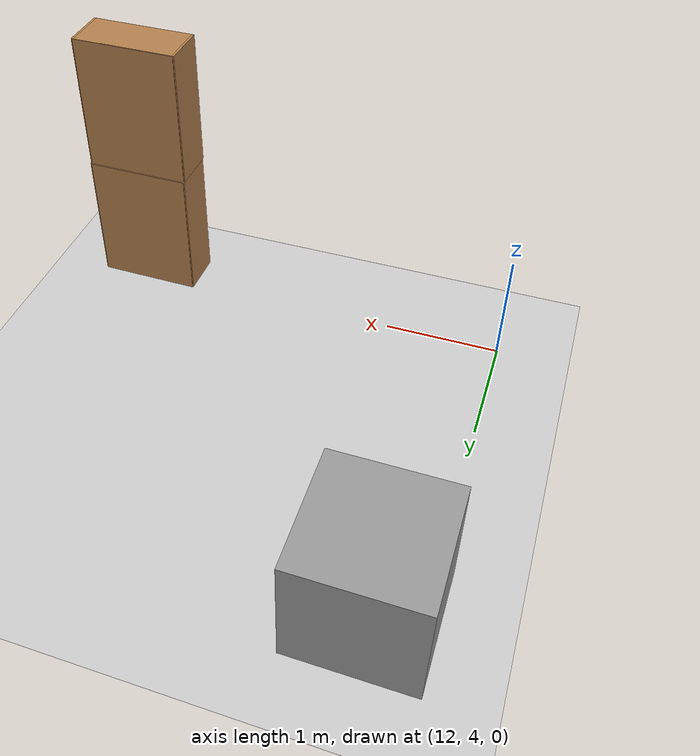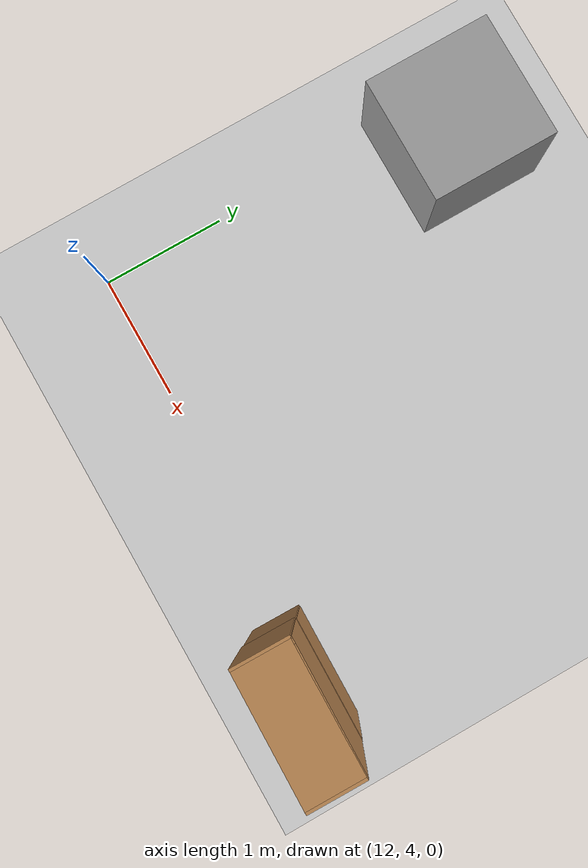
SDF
<sdf version="1.7">
 <world name="default">
  <model name="ground_plane">
   <static>1</static>
   <link name="link">
    <collision name="collision">
     <geometry><plane><normal>0 0 1</normal><size>100 100</size></plane></geometry>
     <surface>
      <contact><collide_bitmask>65535</collide_bitmask></contact>
      <friction><ode><mu>100</mu><mu2>50</mu2></ode></friction>
     </surface>
    </collision>
    <visual name="visual">
     <cast_shadows>0</cast_shadows>
     <geometry><plane><normal>0 0 1</normal><size>100 100</size></plane></geometry>
     <material>
      <script><uri>file://media/materials/scripts/gazebo.material</uri><name>Gazebo/Grey</name></script>
     </material>
    </visual>
   </link>
  </model>
  <model name="Untitled_1">
   <link name="link_0">
    <inertial>
     <mass>1</mass>
     <inertia>
      <ixx>0.166667</ixx>
      <ixy>0</ixy>
      <ixz>0</ixz>
      <iyy>0.166667</iyy>
      <iyz>0</iyz>
      <izz>0.166667</izz>
     </inertia>
    </inertial>
    <pose>-1.2e-05 -4e-06 0 0 -0 0</pose>
    <visual name="visual">
     <geometry><box><size>1 1 1</size></box></geometry>
     <material>
      <lighting>1</lighting>
      <script><uri>file://media/materials/scripts/gazebo.material</uri><name>Gazebo/Grey</name></script>
      <shader type="pixel"/>
     </material>
    </visual>
    <collision name="collision">
     <geometry><box><size>1 1 1</size></box></geometry>
     <surface>
      <friction>
       <ode><mu>1</mu><mu2>1</mu2><fdir1>0 0 0</fdir1><slip1>0</slip1><slip2>0</slip2></ode>
       <torsional>
        <coefficient>1</coefficient>
        <patch_radius>0</patch_radius>
        <surface_radius>0</surface_radius>
        <use_patch_radius>1</use_patch_radius>
        <ode><slip>0</slip></ode>
       </torsional>
      </friction>
      <bounce><restitution_coefficient>0</restitution_coefficient><threshold>1e+06</threshold></bounce>
      <contact>
       <collide_without_contact>0</collide_without_contact>
       <collide_without_contact_bitmask>1</collide_without_contact_bitmask>
       <collide_bitmask>1</collide_bitmask>
       <ode>
        <soft_cfm>0</soft_cfm>
        <soft_erp>0.2</soft_erp>
        <kp>1e+13</kp>
        <kd>1</kd>
        <max_vel>0.01</max_vel>
        <min_depth>0</min_depth>
       </ode>
       <bullet>
        <split_impulse>1</split_impulse>
        <split_impulse_penetration_threshold>-0.01</split_impulse_penetration_threshold>
        <soft_cfm>0</soft_cfm>
        <soft_erp>0.2</soft_erp>
        <kp>1e+13</kp>
        <kd>1</kd>
       </bullet>
      </contact>
     </surface>
    </collision>
   </link>
   <static>0</static>
   <pose>12.3802 6.85414 0.499995 0 1e-05 0</pose>
  </model>
  <model name="bookshelf_clone_1">
   <static>1</static>
   <link name="link">
    <inertial><mass>1</mass></inertial>
    <collision name="back">
     <pose>0 0.005 0.6 0 -0 0</pose>
     <geometry><box><size>0.9 0.01 1.2</size></box></geometry>
    </collision>
    <visual name="visual1">
     <pose>0 0.005 0.6 0 -0 0</pose>
     <geometry><box><size>0.9 0.01 1.2</size></box></geometry>
     <material>
      <script><uri>file://media/materials/scripts/gazebo.material</uri><name>Gazebo/Wood</name></script>
     </material>
    </visual>
    <collision name="left_side">
     <pose>0.45 -0.195 0.6 0 -0 0</pose>
     <geometry><box><size>0.02 0.4 1.2</size></box></geometry>
    </collision>
    <visual name="visual2">
     <pose>0.45 -0.195 0.6 0 -0 0</pose>
     <geometry><box><size>0.02 0.4 1.2</size></box></geometry>
     <material>
      <script><uri>file://media/materials/scripts/gazebo.material</uri><name>Gazebo/Wood</name></script>
     </material>
    </visual>
    <collision name="right_side">
     <pose>-0.45 -0.195 0.6 0 -0 0</pose>
     <geometry><box><size>0.02 0.4 1.2</size></box></geometry>
    </collision>
    <visual name="visual3">
     <pose>-0.45 -0.195 0.6 0 -0 0</pose>
     <geometry><box><size>0.02 0.4 1.2</size></box></geometry>
     <material>
      <script><uri>file://media/materials/scripts/gazebo.material</uri><name>Gazebo/Wood</name></script>
     </material>
    </visual>
    <collision name="bottom">
     <pose>0 -0.195 0.03 0 -0 0</pose>
     <geometry><box><size>0.88 0.4 0.06</size></box></geometry>
    </collision>
    <visual name="visual4">
     <pose>0 -0.195 0.03 0 -0 0</pose>
     <geometry><box><size>0.88 0.4 0.06</size></box></geometry>
     <material>
      <script><uri>file://media/materials/scripts/gazebo.material</uri><name>Gazebo/Wood</name></script>
     </material>
    </visual>
    <collision name="top">
     <pose>0 -0.195 1.19 0 -0 0</pose>
     <geometry><box><size>0.88 0.4 0.02</size></box></geometry>
    </collision>
    <visual name="visual5">
     <pose>0 -0.195 1.19 0 -0 0</pose>
     <geometry><box><size>0.88 0.4 0.02</size></box></geometry>
     <material>
      <script><uri>file://media/materials/scripts/gazebo.material</uri><name>Gazebo/Wood</name></script>
     </material>
    </visual>
    <collision name="low_shelf">
     <pose>0 -0.195 0.43 0 -0 0</pose>
     <geometry><box><size>0.88 0.4 0.02</size></box></geometry>
    </collision>
    <visual name="visual6">
     <pose>0 -0.195 0.43 0 -0 0</pose>
     <geometry><box><size>0.88 0.4 0.02</size></box></geometry>
     <material>
      <script><uri>file://media/materials/scripts/gazebo.material</uri><name>Gazebo/Wood</name></script>
     </material>
    </visual>
    <collision name="high_shelf">
     <pose>0 -0.195 0.8 0 -0 0</pose>
     <geometry><box><size>0.88 0.4 0.02</size></box></geometry>
    </collision>
    <visual name="visual7">
     <pose>0 -0.195 0.8 0 -0 0</pose>
     <geometry><box><size>0.88 0.4 0.02</size></box></geometry>
     <material>
      <script><uri>file://media/materials/scripts/gazebo.material</uri><name>Gazebo/Wood</name></script>
     </material>
    </visual>
   </link>
   <pose>15.3561 4.05428 1.20996 0 0 -0.012809</pose>
  </model>
  <model name="bookshelf_clone_1_clone_0">
   <static>1</static>
   <link name="link">
    <inertial><mass>1</mass></inertial>
    <collision name="back">
     <pose>0 0.005 0.6 0 -0 0</pose>
     <geometry><box><size>0.9 0.01 1.2</size></box></geometry>
    </collision>
    <visual name="visual1">
     <pose>0 0.005 0.6 0 -0 0</pose>
     <geometry><box><size>0.9 0.01 1.2</size></box></geometry>
     <material>
      <script><uri>file://media/materials/scripts/gazebo.material</uri><name>Gazebo/Wood</name></script>
     </material>
    </visual>
    <collision name="left_side">
     <pose>0.45 -0.195 0.6 0 -0 0</pose>
     <geometry><box><size>0.02 0.4 1.2</size></box></geometry>
    </collision>
    <visual name="visual2">
     <pose>0.45 -0.195 0.6 0 -0 0</pose>
     <geometry><box><size>0.02 0.4 1.2</size></box></geometry>
     <material>
      <script><uri>file://media/materials/scripts/gazebo.material</uri><name>Gazebo/Wood</name></script>
     </material>
    </visual>
    <collision name="right_side">
     <pose>-0.45 -0.195 0.6 0 -0 0</pose>
     <geometry><box><size>0.02 0.4 1.2</size></box></geometry>
    </collision>
    <visual name="visual3">
     <pose>-0.45 -0.195 0.6 0 -0 0</pose>
     <geometry><box><size>0.02 0.4 1.2</size></box></geometry>
     <material>
      <script><uri>file://media/materials/scripts/gazebo.material</uri><name>Gazebo/Wood</name></script>
     </material>
    </visual>
    <collision name="bottom">
     <pose>0 -0.195 0.03 0 -0 0</pose>
     <geometry><box><size>0.88 0.4 0.06</size></box></geometry>
    </collision>
    <visual name="visual4">
     <pose>0 -0.195 0.03 0 -0 0</pose>
     <geometry><box><size>0.88 0.4 0.06</size></box></geometry>
     <material>
      <script><uri>file://media/materials/scripts/gazebo.material</uri><name>Gazebo/Wood</name></script>
     </material>
    </visual>
    <collision name="top">
     <pose>0 -0.195 1.19 0 -0 0</pose>
     <geometry><box><size>0.88 0.4 0.02</size></box></geometry>
    </collision>
    <visual name="visual5">
     <pose>0 -0.195 1.19 0 -0 0</pose>
     <geometry><box><size>0.88 0.4 0.02</size></box></geometry>
     <material>
      <script><uri>file://media/materials/scripts/gazebo.material</uri><name>Gazebo/Wood</name></script>
     </material>
    </visual>
    <collision name="low_shelf">
     <pose>0 -0.195 0.43 0 -0 0</pose>
     <geometry><box><size>0.88 0.4 0.02</size></box></geometry>
    </collision>
    <visual name="visual6">
     <pose>0 -0.195 0.43 0 -0 0</pose>
     <geometry><box><size>0.88 0.4 0.02</size></box></geometry>
     <material>
      <script><uri>file://media/materials/scripts/gazebo.material</uri><name>Gazebo/Wood</name></script>
     </material>
    </visual>
    <collision name="high_shelf">
     <pose>0 -0.195 0.8 0 -0 0</pose>
     <geometry><box><size>0.88 0.4 0.02</size></box></geometry>
    </collision>
    <visual name="visual7">
     <pose>0 -0.195 0.8 0 -0 0</pose>
     <geometry><box><size>0.88 0.4 0.02</size></box></geometry>
     <material>
      <script><uri>file://media/materials/scripts/gazebo.material</uri><name>Gazebo/Wood</name></script>
     </material>
    </visual>
   </link>
   <pose>15.3624 4.05636 0 0 0 -0.012809</pose>
  </model>
 </world>
</sdf>
